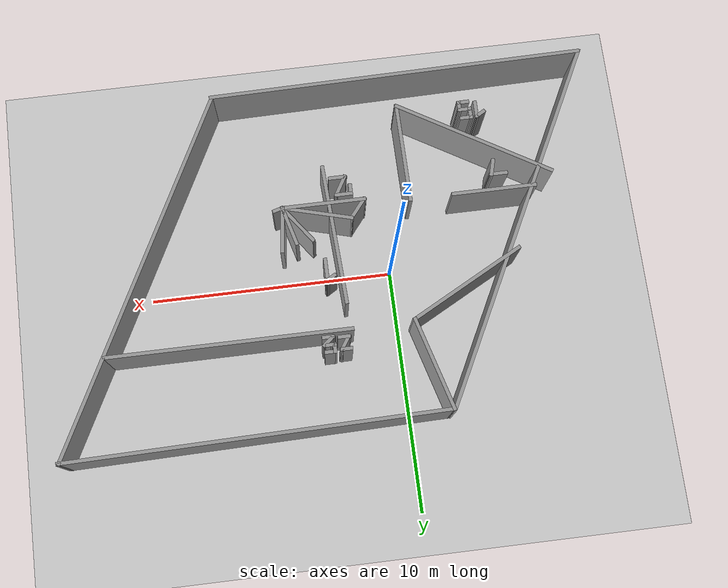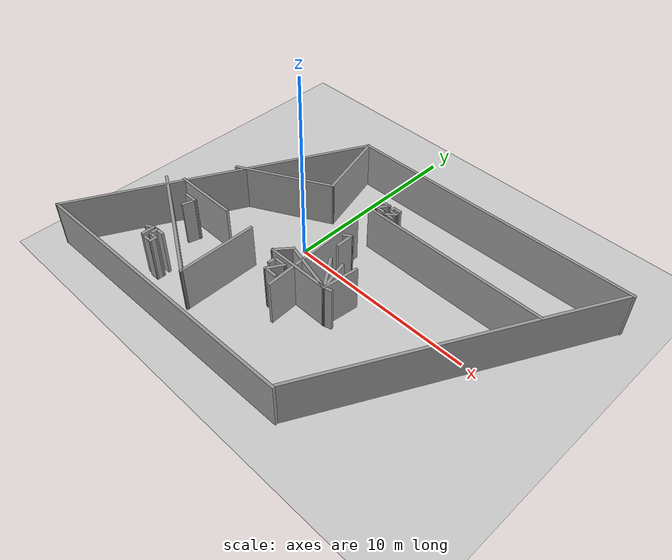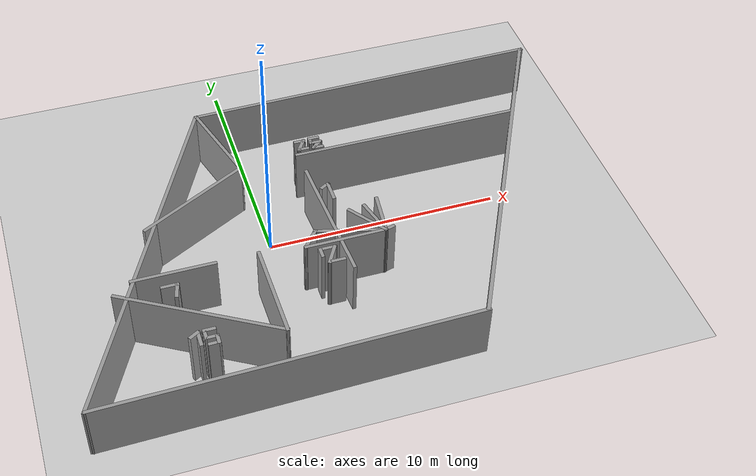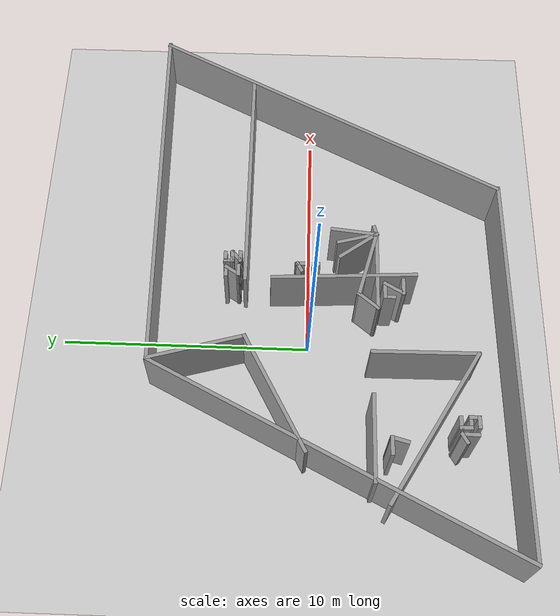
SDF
<sdf version="1.7">
 <world name="default">
  <light name="sun" type="directional">
   <pose>0 0 10 0 -0 0</pose>
   <diffuse>0.8 0.8 0.8 1</diffuse>
   <specular>0.2 0.2 0.2 1</specular>
   <attenuation>
    <range>1000</range>
    <constant>0.9</constant>
    <linear>0.01</linear>
    <quadratic>0.001</quadratic>
   </attenuation>
   <direction>-0.5 0.1 -0.9</direction>
   <spot><inner_angle>0</inner_angle><outer_angle>0</outer_angle><falloff>0</falloff></spot>
  </light>
  <model name="ground_plane">
   <static>1</static>
   <link name="link">
    <collision name="collision">
     <geometry><plane><normal>0 0 1</normal><size>100 100</size></plane></geometry>
     <surface>
      <contact><collide_bitmask>65535</collide_bitmask></contact>
      <friction><ode><mu>100</mu><mu2>50</mu2></ode></friction>
     </surface>
    </collision>
    <visual name="visual">
     <cast_shadows>0</cast_shadows>
     <geometry><plane><normal>0 0 1</normal><size>100 100</size></plane></geometry>
     <material>
      <script><uri>file://media/materials/scripts/gazebo.material</uri><name>Gazebo/Grey</name></script>
     </material>
    </visual>
   </link>
  </model>
  <gravity>0 0 -9.8</gravity>
  <magnetic_field>6e-06 2.3e-05 -4.2e-05</magnetic_field>
  <atmosphere type="adiabatic"/>
  <physics type="ode">
   <max_step_size>0.001</max_step_size>
   <real_time_factor>1</real_time_factor>
   <real_time_update_rate>1000</real_time_update_rate>
  </physics>
  <scene><ambient>0.4 0.4 0.4 1</ambient><background>0.7 0.7 0.7 1</background><shadows>1</shadows></scene>
  <audio><device>default</device></audio>
  <spherical_coordinates>
   <surface_model>EARTH_WGS84</surface_model>
   <latitude_deg>0</latitude_deg>
   <longitude_deg>0</longitude_deg>
   <elevation>0</elevation>
   <heading_deg>0</heading_deg>
  </spherical_coordinates>
  <model name="mieszkanie">
   <pose>2.47101 -0.758951 0 0 -0 0</pose>
   <link name="Wall_0">
    <collision name="Wall_0_Collision">
     <geometry><box><size>16.2016 0.15 2.5</size></box></geometry>
     <pose>0 0 1.25 0 -0 0</pose>
    </collision>
    <visual name="Wall_0_Visual">
     <pose>0 0 1.25 0 -0 0</pose>
     <geometry><box><size>16.2016 0.15 2.5</size></box></geometry>
     <material>
      <script><uri>file://media/materials/scripts/gazebo.material</uri><name>Gazebo/Grey</name></script>
      <ambient>1 1 1 1</ambient>
     </material>
     <meta><layer>0</layer></meta>
    </visual>
    <pose>-7.76626 -0.137684 0 0 -0 1.09956</pose>
   </link>
   <link name="Wall_14">
    <collision name="Wall_14_Collision">
     <geometry><box><size>3.5 0.15 2.5</size></box></geometry>
     <pose>0 0 1.25 0 -0 0</pose>
    </collision>
    <visual name="Wall_14_Visual">
     <pose>0 0 1.25 0 -0 0</pose>
     <geometry><box><size>3.5 0.15 2.5</size></box></geometry>
     <material>
      <script><uri>file://media/materials/scripts/gazebo.material</uri><name>Gazebo/Grey</name></script>
      <ambient>1 1 1 1</ambient>
     </material>
     <meta><layer>0</layer></meta>
    </visual>
    <pose>0.012586 -1.91189 0 0 -0 3.14159</pose>
   </link>
   <link name="Wall_15">
    <collision name="Wall_15_Collision">
     <geometry><box><size>1.09902 0.15 2.5</size></box></geometry>
     <pose>0 0 1.25 0 -0 0</pose>
    </collision>
    <visual name="Wall_15_Visual">
     <pose>0 0 1.25 0 -0 0</pose>
     <geometry><box><size>1.09902 0.15 2.5</size></box></geometry>
     <material>
      <script><uri>file://media/materials/scripts/gazebo.material</uri><name>Gazebo/Grey</name></script>
      <ambient>1 1 1 1</ambient>
     </material>
     <meta><layer>0</layer></meta>
    </visual>
    <pose>-1.36386 -1.54307 0 0 -0 0.890292</pose>
   </link>
   <link name="Wall_16">
    <collision name="Wall_16_Collision">
     <geometry><box><size>3 0.15 2.5</size></box></geometry>
     <pose>0 0 1.25 0 -0 0</pose>
    </collision>
    <visual name="Wall_16_Visual">
     <pose>0 0 1.25 0 -0 0</pose>
     <geometry><box><size>3 0.15 2.5</size></box></geometry>
     <material>
      <script><uri>file://media/materials/scripts/gazebo.material</uri><name>Gazebo/Grey</name></script>
      <ambient>1 1 1 1</ambient>
     </material>
     <meta><layer>0</layer></meta>
    </visual>
    <pose>0.311142 -1.54307 0 0 -0 -0.261799</pose>
   </link>
   <link name="Wall_19">
    <collision name="Wall_19_Collision">
     <geometry><box><size>3.5 0.15 2.5</size></box></geometry>
     <pose>0 0 1.25 0 -0 0</pose>
    </collision>
    <visual name="Wall_19_Visual">
     <pose>0 0 1.25 0 -0 0</pose>
     <geometry><box><size>3.5 0.15 2.5</size></box></geometry>
     <material>
      <script><uri>file://media/materials/scripts/gazebo.material</uri><name>Gazebo/Grey</name></script>
      <ambient>1 1 1 1</ambient>
     </material>
     <meta><layer>0</layer></meta>
    </visual>
    <pose>-6.98163 -1.67776 0 0 -0 0</pose>
   </link>
   <link name="Wall_21">
    <collision name="Wall_21_Collision">
     <geometry><box><size>10 0.15 2.5</size></box></geometry>
     <pose>0 0 1.25 0 -0 0</pose>
    </collision>
    <visual name="Wall_21_Visual">
     <pose>0 0 1.25 0 -0 0</pose>
     <geometry><box><size>10 0.15 2.5</size></box></geometry>
     <material>
      <script><uri>file://media/materials/scripts/gazebo.material</uri><name>Gazebo/Grey</name></script>
      <ambient>1 1 1 1</ambient>
     </material>
     <meta><layer>0</layer></meta>
    </visual>
    <pose>4.40742 3.37265 0 0 -0 3.14159</pose>
   </link>
   <link name="Wall_24">
    <collision name="Wall_24_Collision">
     <geometry><box><size>4.01464 0.15 2.5</size></box></geometry>
     <pose>0 0 1.25 0 -0 0</pose>
    </collision>
    <visual name="Wall_24_Visual">
     <pose>0 0 1.25 0 -0 0</pose>
     <geometry><box><size>4.01464 0.15 2.5</size></box></geometry>
     <material>
      <script><uri>file://media/materials/scripts/gazebo.material</uri><name>Gazebo/Grey</name></script>
      <ambient>1 1 1 1</ambient>
     </material>
     <meta><layer>0</layer></meta>
    </visual>
    <pose>-3.5627 5.15219 0 0 -0 -1.29862</pose>
   </link>
   <link name="Wall_25">
    <collision name="Wall_25_Collision">
     <geometry><box><size>5.30117 0.15 2.5</size></box></geometry>
     <pose>0 0 1.25 0 -0 0</pose>
    </collision>
    <visual name="Wall_25_Visual">
     <pose>0 0 1.25 0 -0 0</pose>
     <geometry><box><size>5.30117 0.15 2.5</size></box></geometry>
     <material>
      <script><uri>file://media/materials/scripts/gazebo.material</uri><name>Gazebo/Grey</name></script>
      <ambient>1 1 1 1</ambient>
     </material>
     <meta><layer>0</layer></meta>
    </visual>
    <pose>-5.31655 2.08036 0 0 -0 -2.65225</pose>
   </link>
   <link name="Wall_27">
    <collision name="Wall_27_Collision">
     <geometry><box><size>1.97911 0.15 2.5</size></box></geometry>
     <pose>0 0 1.25 0 -0 0</pose>
    </collision>
    <visual name="Wall_27_Visual">
     <pose>0 0 1.25 0 -0 0</pose>
     <geometry><box><size>1.97911 0.15 2.5</size></box></geometry>
     <material>
      <script><uri>file://media/materials/scripts/gazebo.material</uri><name>Gazebo/Grey</name></script>
      <ambient>1 1 1 1</ambient>
     </material>
     <meta><layer>0</layer></meta>
    </visual>
    <pose>1.14731 -1.17398 0 0 -0 -0.938802</pose>
   </link>
   <link name="Wall_28">
    <collision name="Wall_28_Collision">
     <geometry><box><size>1.75 0.15 2.5</size></box></geometry>
     <pose>0 0 1.25 0 -0 0</pose>
    </collision>
    <visual name="Wall_28_Visual">
     <pose>0 0 1.25 0 -0 0</pose>
     <geometry><box><size>1.75 0.15 2.5</size></box></geometry>
     <material>
      <script><uri>file://media/materials/scripts/gazebo.material</uri><name>Gazebo/Grey</name></script>
      <ambient>1 1 1 1</ambient>
     </material>
     <meta><layer>0</layer></meta>
    </visual>
    <pose>1.48053 -1.13915 0 0 -0 1.8326</pose>
   </link>
   <link name="Wall_3">
    <collision name="Wall_3_Collision">
     <geometry><box><size>15.638 0.15 2.5</size></box></geometry>
     <pose>0 0 1.25 0 -0 0</pose>
    </collision>
    <visual name="Wall_3_Visual">
     <pose>0 0 1.25 0 -0 0</pose>
     <geometry><box><size>15.638 0.15 2.5</size></box></geometry>
     <material>
      <script><uri>file://media/materials/scripts/gazebo.material</uri><name>Gazebo/Grey</name></script>
      <ambient>1 1 1 1</ambient>
     </material>
     <meta><layer>0</layer></meta>
    </visual>
    <pose>-3.6363 -7.16638 0 0 -0 0.015801</pose>
   </link>
   <link name="Wall_31">
    <collision name="Wall_31_Collision">
     <geometry><box><size>1.95572 0.15 2.5</size></box></geometry>
     <pose>0 0 1.25 0 -0 0</pose>
    </collision>
    <visual name="Wall_31_Visual">
     <pose>0 0 1.25 0 -0 0</pose>
     <geometry><box><size>1.95572 0.15 2.5</size></box></geometry>
     <material>
      <script><uri>file://media/materials/scripts/gazebo.material</uri><name>Gazebo/Grey</name></script>
      <ambient>1 1 1 1</ambient>
     </material>
     <meta><layer>0</layer></meta>
    </visual>
    <pose>1.78571 -1.01438 0 0 -0 -1.67969</pose>
   </link>
   <link name="Wall_32">
    <collision name="Wall_32_Collision">
     <geometry><box><size>0.5 0.15 2.5</size></box></geometry>
     <pose>0 0 1.25 0 -0 0</pose>
    </collision>
    <visual name="Wall_32_Visual">
     <pose>0 0 1.25 0 -0 0</pose>
     <geometry><box><size>0.5 0.15 2.5</size></box></geometry>
     <material>
      <script><uri>file://media/materials/scripts/gazebo.material</uri><name>Gazebo/Grey</name></script>
      <ambient>0 0 0 1</ambient>
     </material>
     <meta><layer>0</layer></meta>
    </visual>
    <pose>1.85662 -1.8666 0 0 -0 0.261799</pose>
   </link>
   <link name="Wall_33">
    <collision name="Wall_33_Collision">
     <geometry><box><size>5.88351 0.15 2.5</size></box></geometry>
     <pose>0 0 1.25 0 -0 0</pose>
    </collision>
    <visual name="Wall_33_Visual">
     <pose>0 0 1.25 0 -0 0</pose>
     <geometry><box><size>5.88351 0.15 2.5</size></box></geometry>
     <material>
      <script><uri>file://media/materials/scripts/gazebo.material</uri><name>Gazebo/Grey</name></script>
      <ambient>1 1 1 1</ambient>
     </material>
     <meta><layer>0</layer></meta>
    </visual>
    <pose>-0.280754 -0.585695 0 0 -0 1.62301</pose>
   </link>
   <link name="Wall_4">
    <collision name="Wall_4_Collision">
     <geometry><box><size>16.2155 0.15 2.5</size></box></geometry>
     <pose>0 0 1.25 0 -0 0</pose>
    </collision>
    <visual name="Wall_4_Visual">
     <pose>0 0 1.25 0 -0 0</pose>
     <geometry><box><size>16.2155 0.15 2.5</size></box></geometry>
     <material>
      <script><uri>file://media/materials/scripts/gazebo.material</uri><name>Gazebo/Grey</name></script>
      <ambient>1 1 1 1</ambient>
     </material>
     <meta><layer>0</layer></meta>
    </visual>
    <pose>7.73507 0.137628 0 0 -0 1.09786</pose>
   </link>
   <link name="Wall_40">
    <collision name="Wall_40_Collision">
     <geometry><box><size>0.75 0.15 2.5</size></box></geometry>
     <pose>0 0 1.25 0 -0 0</pose>
    </collision>
    <visual name="Wall_40_Visual">
     <pose>0 0 1.25 0 -0 0</pose>
     <geometry><box><size>0.75 0.15 2.5</size></box></geometry>
     <material>
      <script><uri>file://media/materials/scripts/gazebo.material</uri><name>Gazebo/Grey</name></script>
      <ambient>1 1 1 1</ambient>
     </material>
     <meta><layer>0</layer></meta>
    </visual>
    <pose>-7.26468 -2.33059 0 0 -0 3.14159</pose>
   </link>
   <link name="Wall_42">
    <collision name="Wall_42_Collision">
     <geometry><box><size>0.75 0.15 2.5</size></box></geometry>
     <pose>0 0 1.25 0 -0 0</pose>
    </collision>
    <visual name="Wall_42_Visual">
     <pose>0 0 1.25 0 -0 0</pose>
     <geometry><box><size>0.75 0.15 2.5</size></box></geometry>
     <material>
      <script><uri>file://media/materials/scripts/gazebo.material</uri><name>Gazebo/Grey</name></script>
      <ambient>1 1 1 1</ambient>
     </material>
     <meta><layer>0</layer></meta>
    </visual>
    <pose>-7.04233 -2.62036 0 0 -0 -1.8326</pose>
   </link>
   <link name="Wall_44">
    <collision name="Wall_44_Collision">
     <geometry><box><size>0.5 0.15 2.5</size></box></geometry>
     <pose>0 0 1.25 0 -0 0</pose>
    </collision>
    <visual name="Wall_44_Visual">
     <pose>0 0 1.25 0 -0 0</pose>
     <geometry><box><size>0.5 0.15 2.5</size></box></geometry>
     <material>
      <script><uri>file://media/materials/scripts/gazebo.material</uri><name>Gazebo/Grey</name></script>
      <ambient>1 1 1 1</ambient>
     </material>
     <meta><layer>0</layer></meta>
    </visual>
    <pose>-1.16158 -2.37993 0 0 -0 1.5708</pose>
   </link>
   <link name="Wall_45">
    <collision name="Wall_45_Collision">
     <geometry><box><size>0.75 0.15 2.5</size></box></geometry>
     <pose>0 0 1.25 0 -0 0</pose>
    </collision>
    <visual name="Wall_45_Visual">
     <pose>0 0 1.25 0 -0 0</pose>
     <geometry><box><size>0.75 0.15 2.5</size></box></geometry>
     <material>
      <script><uri>file://media/materials/scripts/gazebo.material</uri><name>Gazebo/Grey</name></script>
      <ambient>1 1 1 1</ambient>
     </material>
     <meta><layer>0</layer></meta>
    </visual>
    <pose>-0.861575 -2.20493 0 0 -0 0</pose>
   </link>
   <link name="Wall_46">
    <collision name="Wall_46_Collision">
     <geometry><box><size>1 0.15 2.5</size></box></geometry>
     <pose>0 0 1.25 0 -0 0</pose>
    </collision>
    <visual name="Wall_46_Visual">
     <pose>0 0 1.25 0 -0 0</pose>
     <geometry><box><size>1 0.15 2.5</size></box></geometry>
     <material>
      <script><uri>file://media/materials/scripts/gazebo.material</uri><name>Gazebo/Grey</name></script>
      <ambient>1 1 1 1</ambient>
     </material>
     <meta><layer>0</layer></meta>
    </visual>
    <pose>-0.774075 -2.57299 0 0 -0 -2.0944</pose>
   </link>
   <link name="Wall_47">
    <collision name="Wall_47_Collision">
     <geometry><box><size>0.75 0.15 2.5</size></box></geometry>
     <pose>0 0 1.25 0 -0 0</pose>
    </collision>
    <visual name="Wall_47_Visual">
     <pose>0 0 1.25 0 -0 0</pose>
     <geometry><box><size>0.75 0.15 2.5</size></box></geometry>
     <material>
      <script><uri>file://media/materials/scripts/gazebo.material</uri><name>Gazebo/Grey</name></script>
      <ambient>1 1 1 1</ambient>
     </material>
     <meta><layer>0</layer></meta>
    </visual>
    <pose>-0.686575 -2.94105 0 0 -0 0</pose>
   </link>
   <link name="Wall_49">
    <collision name="Wall_49_Collision">
     <geometry><box><size>0.5 0.15 2.5</size></box></geometry>
     <pose>0 0 1.25 0 -0 0</pose>
    </collision>
    <visual name="Wall_49_Visual">
     <pose>0 0 1.25 0 -0 0</pose>
     <geometry><box><size>0.5 0.15 2.5</size></box></geometry>
     <material>
      <script><uri>file://media/materials/scripts/gazebo.material</uri><name>Gazebo/Grey</name></script>
      <ambient>1 1 1 1</ambient>
     </material>
     <meta><layer>0</layer></meta>
    </visual>
    <pose>-0.192402 4.15184 0 0 -0 0</pose>
   </link>
   <link name="Wall_5">
    <collision name="Wall_5_Collision">
     <geometry><box><size>15.6691 0.15 2.5</size></box></geometry>
     <pose>0 0 1.25 0 -0 0</pose>
    </collision>
    <visual name="Wall_5_Visual">
     <pose>0 0 1.25 0 -0 0</pose>
     <geometry><box><size>15.6691 0.15 2.5</size></box></geometry>
     <material>
      <script><uri>file://media/materials/scripts/gazebo.material</uri><name>Gazebo/Grey</name></script>
      <ambient>1 1 1 1</ambient>
     </material>
     <meta><layer>0</layer></meta>
    </visual>
    <pose>3.67615 7.15102 0 0 -0 -3.12385</pose>
   </link>
   <link name="Wall_50">
    <collision name="Wall_50_Collision">
     <geometry><box><size>0.743379 0.15 2.5</size></box></geometry>
     <pose>0 0 1.25 0 -0 0</pose>
    </collision>
    <visual name="Wall_50_Visual">
     <pose>0 0 1.25 0 -0 0</pose>
     <geometry><box><size>0.743379 0.15 2.5</size></box></geometry>
     <material>
      <script><uri>file://media/materials/scripts/gazebo.material</uri><name>Gazebo/Grey</name></script>
      <ambient>1 1 1 1</ambient>
     </material>
     <meta><layer>0</layer></meta>
    </visual>
    <pose>-0.179317 3.90322 0 0 -0 -2.14807</pose>
   </link>
   <link name="Wall_51">
    <collision name="Wall_51_Collision">
     <geometry><box><size>0.525099 0.15 2.5</size></box></geometry>
     <pose>0 0 1.25 0 -0 0</pose>
    </collision>
    <visual name="Wall_51_Visual">
     <pose>0 0 1.25 0 -0 0</pose>
     <geometry><box><size>0.525099 0.15 2.5</size></box></geometry>
     <material>
      <script><uri>file://media/materials/scripts/gazebo.material</uri><name>Gazebo/Grey</name></script>
      <ambient>1 1 1 1</ambient>
     </material>
     <meta><layer>0</layer></meta>
    </visual>
    <pose>-0.153683 3.65461 0 0 -0 0</pose>
   </link>
   <link name="Wall_53">
    <collision name="Wall_53_Collision">
     <geometry><box><size>0.5 0.15 2.5</size></box></geometry>
     <pose>0 0 1.25 0 -0 0</pose>
    </collision>
    <visual name="Wall_53_Visual">
     <pose>0 0 1.25 0 -0 0</pose>
     <geometry><box><size>0.5 0.15 2.5</size></box></geometry>
     <material>
      <script><uri>file://media/materials/scripts/gazebo.material</uri><name>Gazebo/Grey</name></script>
      <ambient>1 1 1 1</ambient>
     </material>
     <meta><layer>0</layer></meta>
    </visual>
    <pose>0.440032 4.19981 0 0 -0 0</pose>
   </link>
   <link name="Wall_55">
    <collision name="Wall_55_Collision">
     <geometry><box><size>0.424816 0.15 2.5</size></box></geometry>
     <pose>0 0 1.25 0 -0 0</pose>
    </collision>
    <visual name="Wall_55_Visual">
     <pose>0 0 1.25 0 -0 0</pose>
     <geometry><box><size>0.424816 0.15 2.5</size></box></geometry>
     <material>
      <script><uri>file://media/materials/scripts/gazebo.material</uri><name>Gazebo/Grey</name></script>
      <ambient>1 1 1 1</ambient>
     </material>
     <meta><layer>0</layer></meta>
    </visual>
    <pose>0.262851 4.06242 0 0 -0 1.55492</pose>
   </link>
   <link name="Wall_57">
    <collision name="Wall_57_Collision">
     <geometry><box><size>0.25 0.15 2.5</size></box></geometry>
     <pose>0 0 1.25 0 -0 0</pose>
    </collision>
    <visual name="Wall_57_Visual">
     <pose>0 0 1.25 0 -0 0</pose>
     <geometry><box><size>0.25 0.15 2.5</size></box></geometry>
     <material>
      <script><uri>file://media/materials/scripts/gazebo.material</uri><name>Gazebo/Grey</name></script>
      <ambient>1 1 1 1</ambient>
     </material>
     <meta><layer>0</layer></meta>
    </visual>
    <pose>0.31067 3.92503 0 0 -0 0</pose>
   </link>
   <link name="Wall_58">
    <collision name="Wall_58_Collision">
     <geometry><box><size>0.446939 0.15 2.5</size></box></geometry>
     <pose>0 0 1.25 0 -0 0</pose>
    </collision>
    <visual name="Wall_58_Visual">
     <pose>0 0 1.25 0 -0 0</pose>
     <geometry><box><size>0.446939 0.15 2.5</size></box></geometry>
     <material>
      <script><uri>file://media/materials/scripts/gazebo.material</uri><name>Gazebo/Grey</name></script>
      <ambient>1 1 1 1</ambient>
     </material>
     <meta><layer>0</layer></meta>
    </visual>
    <pose>0.509124 3.92285 0 0 -0 -0.014689</pose>
   </link>
   <link name="Wall_59">
    <collision name="Wall_59_Collision">
     <geometry><box><size>0.635865 0.15 2.5</size></box></geometry>
     <pose>0 0 1.25 0 -0 0</pose>
    </collision>
    <visual name="Wall_59_Visual">
     <pose>0 0 1.25 0 -0 0</pose>
     <geometry><box><size>0.635865 0.15 2.5</size></box></geometry>
     <material>
      <script><uri>file://media/materials/scripts/gazebo.material</uri><name>Gazebo/Grey</name></script>
      <ambient>1 1 1 1</ambient>
     </material>
     <meta><layer>0</layer></meta>
    </visual>
    <pose>0.472209 3.76365 0 0 -0 -2.43881</pose>
   </link>
   <link name="Wall_60">
    <collision name="Wall_60_Collision">
     <geometry><box><size>0.52084 0.15 2.5</size></box></geometry>
     <pose>0 0 1.25 0 -0 0</pose>
    </collision>
    <visual name="Wall_60_Visual">
     <pose>0 0 1.25 0 -0 0</pose>
     <geometry><box><size>0.52084 0.15 2.5</size></box></geometry>
     <material>
      <script><uri>file://media/materials/scripts/gazebo.material</uri><name>Gazebo/Grey</name></script>
      <ambient>1 1 1 1</ambient>
     </material>
     <meta><layer>0</layer></meta>
    </visual>
    <pose>0.472209 3.60227 0 0 -0 -0.023525</pose>
   </link>
   <link name="Wall_62">
    <collision name="Wall_62_Collision">
     <geometry><box><size>0.5 0.15 2.5</size></box></geometry>
     <pose>0 0 1.25 0 -0 0</pose>
    </collision>
    <visual name="Wall_62_Visual">
     <pose>0 0 1.25 0 -0 0</pose>
     <geometry><box><size>0.5 0.15 2.5</size></box></geometry>
     <material>
      <script><uri>file://media/materials/scripts/gazebo.material</uri><name>Gazebo/Grey</name></script>
      <ambient>1 1 1 1</ambient>
     </material>
     <meta><layer>0</layer></meta>
    </visual>
    <pose>0.065681 1.20937 0 0 -0 0.523599</pose>
   </link>
   <link name="Wall_63">
    <collision name="Wall_63_Collision">
     <geometry><box><size>1 0.15 2.5</size></box></geometry>
     <pose>0 0 1.25 0 -0 0</pose>
    </collision>
    <visual name="Wall_63_Visual">
     <pose>0 0 1.25 0 -0 0</pose>
     <geometry><box><size>1 0.15 2.5</size></box></geometry>
     <material>
      <script><uri>file://media/materials/scripts/gazebo.material</uri><name>Gazebo/Grey</name></script>
      <ambient>1 1 1 1</ambient>
     </material>
     <meta><layer>0</layer></meta>
    </visual>
    <pose>0.217235 0.871874 0 0 -0 -1.5708</pose>
   </link>
   <link name="Wall_66">
    <collision name="Wall_66_Collision">
     <geometry><box><size>0.5 0.15 2.5</size></box></geometry>
     <pose>0 0 1.25 0 -0 0</pose>
    </collision>
    <visual name="Wall_66_Visual">
     <pose>0 0 1.25 0 -0 0</pose>
     <geometry><box><size>0.5 0.15 2.5</size></box></geometry>
     <material>
      <script><uri>file://media/materials/scripts/gazebo.material</uri><name>Gazebo/Grey</name></script>
      <ambient>1 1 1 1</ambient>
     </material>
     <meta><layer>0</layer></meta>
    </visual>
    <pose>-6.90436 -4.99343 0 0 -0 -2.61799</pose>
   </link>
   <link name="Wall_68">
    <collision name="Wall_68_Collision">
     <geometry><box><size>0.75 0.15 2.5</size></box></geometry>
     <pose>0 0 1.25 0 -0 0</pose>
    </collision>
    <visual name="Wall_68_Visual">
     <pose>0 0 1.25 0 -0 0</pose>
     <geometry><box><size>0.75 0.15 2.5</size></box></geometry>
     <material>
      <script><uri>file://media/materials/scripts/gazebo.material</uri><name>Gazebo/Grey</name></script>
      <ambient>1 1 1 1</ambient>
     </material>
     <meta><layer>0</layer></meta>
    </visual>
    <pose>-6.7528 -5.20593 0 0 -0 -1.5708</pose>
   </link>
   <link name="Wall_7">
    <collision name="Wall_7_Collision">
     <geometry><box><size>7.05355 0.15 2.5</size></box></geometry>
     <pose>0 0 1.25 0 -0 0</pose>
    </collision>
    <visual name="Wall_7_Visual">
     <pose>0 0 1.25 0 -0 0</pose>
     <geometry><box><size>7.05355 0.15 2.5</size></box></geometry>
     <material>
      <script><uri>file://media/materials/scripts/gazebo.material</uri><name>Gazebo/Grey</name></script>
      <ambient>1 1 1 1</ambient>
     </material>
     <meta><layer>0</layer></meta>
    </visual>
    <pose>-6.47004 -3.97836 0 0 -0 -0.536534</pose>
   </link>
   <link name="Wall_70">
    <collision name="Wall_70_Collision">
     <geometry><box><size>0.54185 0.15 2.5</size></box></geometry>
     <pose>0 0 1.25 0 -0 0</pose>
    </collision>
    <visual name="Wall_70_Visual">
     <pose>0 0 1.25 0 -0 0</pose>
     <geometry><box><size>0.54185 0.15 2.5</size></box></geometry>
     <material>
      <script><uri>file://media/materials/scripts/gazebo.material</uri><name>Gazebo/Grey</name></script>
      <ambient>1 1 1 1</ambient>
     </material>
     <meta><layer>0</layer></meta>
    </visual>
    <pose>-6.31341 -4.8945 0 0 -0 3.14159</pose>
   </link>
   <link name="Wall_71">
    <collision name="Wall_71_Collision">
     <geometry><box><size>0.518642 0.15 2.5</size></box></geometry>
     <pose>0 0 1.25 0 -0 0</pose>
    </collision>
    <visual name="Wall_71_Visual">
     <pose>0 0 1.25 0 -0 0</pose>
     <geometry><box><size>0.518642 0.15 2.5</size></box></geometry>
     <material>
      <script><uri>file://media/materials/scripts/gazebo.material</uri><name>Gazebo/Grey</name></script>
      <ambient>1 1 1 1</ambient>
     </material>
     <meta><layer>0</layer></meta>
    </visual>
    <pose>-6.50348 -5.07873 0 0 -0 -1.53906</pose>
   </link>
   <link name="Wall_72">
    <collision name="Wall_72_Collision">
     <geometry><box><size>0.565244 0.15 2.5</size></box></geometry>
     <pose>0 0 1.25 0 -0 0</pose>
    </collision>
    <visual name="Wall_72_Visual">
     <pose>0 0 1.25 0 -0 0</pose>
     <geometry><box><size>0.565244 0.15 2.5</size></box></geometry>
     <material>
      <script><uri>file://media/materials/scripts/gazebo.material</uri><name>Gazebo/Grey</name></script>
      <ambient>1 1 1 1</ambient>
     </material>
     <meta><layer>0</layer></meta>
    </visual>
    <pose>-6.29001 -5.26296 0 0 -0 0</pose>
   </link>
   <link name="Wall_73">
    <collision name="Wall_73_Collision">
     <geometry><box><size>0.466036 0.15 2.5</size></box></geometry>
     <pose>0 0 1.25 0 -0 0</pose>
    </collision>
    <visual name="Wall_73_Visual">
     <pose>0 0 1.25 0 -0 0</pose>
     <geometry><box><size>0.466036 0.15 2.5</size></box></geometry>
     <material>
      <script><uri>file://media/materials/scripts/gazebo.material</uri><name>Gazebo/Grey</name></script>
      <ambient>1 1 1 1</ambient>
     </material>
     <meta><layer>0</layer></meta>
    </visual>
    <pose>-6.08531 -5.42087 0 0 -0 -1.58931</pose>
   </link>
   <link name="Wall_74">
    <collision name="Wall_74_Collision">
     <geometry><box><size>0.506807 0.15 2.5</size></box></geometry>
     <pose>0 0 1.25 0 -0 0</pose>
    </collision>
    <visual name="Wall_74_Visual">
     <pose>0 0 1.25 0 -0 0</pose>
     <geometry><box><size>0.506807 0.15 2.5</size></box></geometry>
     <material>
      <script><uri>file://media/materials/scripts/gazebo.material</uri><name>Gazebo/Grey</name></script>
      <ambient>1 1 1 1</ambient>
     </material>
     <meta><layer>0</layer></meta>
    </visual>
    <pose>-6.26662 -5.58171 0 0 -0 -3.1252</pose>
   </link>
   <link name="Wall_8">
    <collision name="Wall_8_Collision">
     <geometry><box><size>4.22992 0.15 2.5</size></box></geometry>
     <pose>0 0 1.25 0 -0 0</pose>
    </collision>
    <visual name="Wall_8_Visual">
     <pose>0 0 1.25 0 -0 0</pose>
     <geometry><box><size>4.22992 0.15 2.5</size></box></geometry>
     <material>
      <script><uri>file://media/materials/scripts/gazebo.material</uri><name>Gazebo/Grey</name></script>
      <ambient>1 1 1 1</ambient>
     </material>
     <meta><layer>0</layer></meta>
    </visual>
    <pose>-3.51519 -3.70289 0 0 -0 1.57987</pose>
   </link>
   <static>1</static>
  </model>
 </world>
</sdf>
